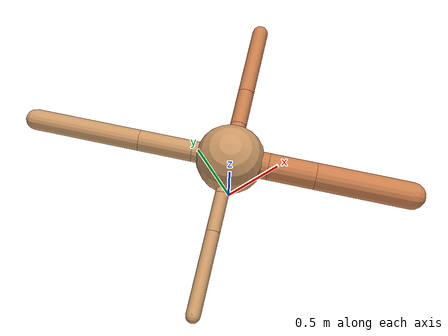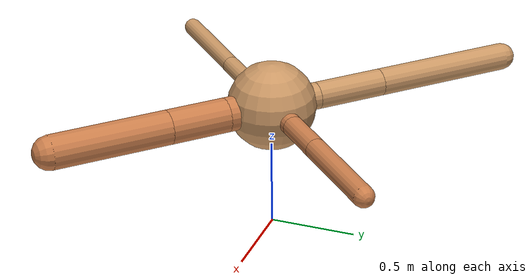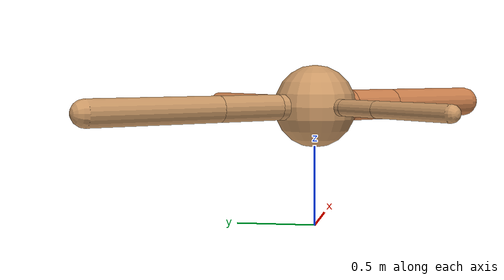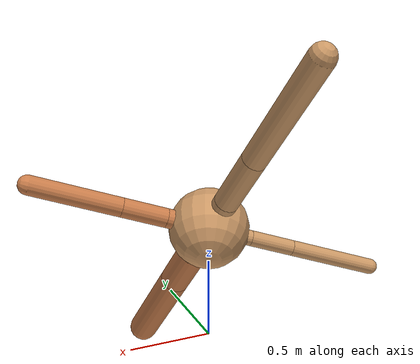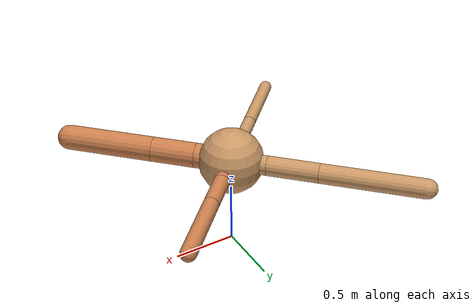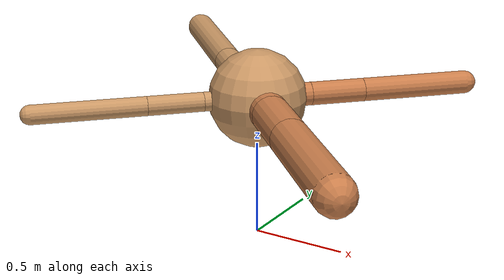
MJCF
<?xml version="1.0" ?>
<mujoco model="ant">

	<compiler angle="degree" coordinate="local" inertiafromgeom="true"/>

	<option integrator="RK4" timestep="0.01"/>

	<custom>

		<numeric data="0.0 0.0 0.55 1.0 0.0 0.0 0.0 0.0 1.0 0.0 -1.0 0.0 -1.0 0.0 1.0" name="init_qpos"/>

	</custom>

	<default>

		<joint armature="1" damping="1" limited="true"/>

		<geom conaffinity="0" condim="3" density="5.0" friction="1.5 0.1 0.1" margin="0.01" rgba="0.8 0.6 0.4 1"/>

	</default>

	<worldbody>

		<body name="torso" pos="0 0 0.75">

			<geom name="torso_geom" pos="0 0 0" size="0.2550442480850814" type="sphere"/>

			<!--joint armature="0" damping="0" limited="false" margin="0.01" name="root" pos="0 0 0" type="free"/-->

			<body name="front_left_leg" pos="0 0 0">

				<geom fromto="0 0 0 0.2 0.2 0" name="aux_1_geom" size="0.06120609128825512" type="capsule" rgba=".8 .5 .3 1"/>

				<body name="aux_1" pos="0.2 0.2 0">

					<joint axis="0 0 1" name="hip_1" pos="0.0 0.0 0.0" range="-40 40" type="hinge"/>

					<geom fromto="0 0 0 0.20196369188007 0.20196369188007 0" name="left_leg_geom" size="0.06120609128825512" type="capsule" rgba=".8 .5 .3 1"/>

					<body pos="0.20196369188007 0.20196369188007 0" name="front_left_foot">

						<joint axis="-1 1 0" name="ankle_1" pos="0.0 0.0 0.0" range="30 100" type="hinge"/>

						<geom fromto="0 0 0 0.40392738376014 0.40392738376014 0" name="left_ankle_geom" size="0.06120609128825512" type="capsule" rgba=".8 .5 .3 1"/>

					</body>

				</body>

			</body>

			<body name="front_right_leg" pos="0 0 0">

				<geom fromto="0 0 0 -0.2 0.2 0" name="aux_2_geom" size="0.0778911178018667" type="capsule"/>

				<body name="aux_2" pos="-0.2 0.2 0">

					<joint axis="0 0 1" name="hip_2" pos="0.0 0.0 0.0" range="-40 40" type="hinge"/>

					<geom fromto="0 0 0 -0.28590058982977584 0.28590058982977584 0" name="right_leg_geom" size="0.0778911178018667" type="capsule"/>

					<body pos="-0.28590058982977584 0.28590058982977584 0" name="front_right_foot">

						<joint axis="1 1 0" name="ankle_2" pos="0.0 0.0 0.0" range="-100 -30" type="hinge"/>

						<geom fromto="0 0 0 -0.5718011796595517 0.5718011796595517 0" name="right_ankle_geom" size="0.0778911178018667" type="capsule"/>

					</body>

				</body>

			</body>

			<body name="left_back_leg" pos="0 0 0">

				<geom fromto="0 0 0 -0.2 -0.2 0" name="aux_3_geom" size="0.050269258232104576" type="capsule"/>

				<body name="aux_3" pos="-0.2 -0.2 0">

					<joint axis="0 0 1" name="hip_3" pos="0.0 0.0 0.0" range="-40 40" type="hinge"/>

					<geom fromto="0 0 0 -0.2048257855751998 -0.2048257855751998 0" name="back_leg_geom" size="0.050269258232104576" type="capsule"/>

					<body pos="-0.2048257855751998 -0.2048257855751998 0" name="left_back_foot">

						<joint axis="-1 1 0" name="ankle_3" pos="0.0 0.0 0.0" range="-100 -30" type="hinge"/>

						<geom fromto="0 0 0 -0.4096515711503996 -0.4096515711503996 0" name="third_ankle_geom" size="0.050269258232104576" type="capsule"/>

					</body>

				</body>

			</body>

			<body name="right_back_leg" pos="0 0 0">

				<geom fromto="0 0 0 0.2 -0.2 0" name="aux_4_geom" size="0.09855471933395331" type="capsule" rgba=".8 .5 .3 1"/>

				<body name="aux_4" pos="0.2 -0.2 0">

					<joint axis="0 0 1" name="hip_4" pos="0.0 0.0 0.0" range="-40 40" type="hinge"/>

					<geom fromto="0 0 0 0.24511261129352443 -0.24511261129352443 0" name="rightback_leg_geom" size="0.09855471933395331" type="capsule" rgba=".8 .5 .3 1"/>

					<body pos="0.24511261129352443 -0.24511261129352443 0" name="right_back_foot">

						<joint axis="1 1 0" name="ankle_4" pos="0.0 0.0 0.0" range="30 100" type="hinge"/>

						<geom fromto="0 0 0 0.49022522258704887 -0.49022522258704887 0" name="fourth_ankle_geom" size="0.09855471933395331" type="capsule" rgba=".8 .5 .3 1"/>

					</body>

				</body>

			</body>

		</body>

	</worldbody>

	<actuator>

		<motor ctrllimited="true" ctrlrange="-1.0 1.0" joint="hip_4" gear="150"/>

		<motor ctrllimited="true" ctrlrange="-1.0 1.0" joint="ankle_4" gear="150"/>

		<motor ctrllimited="true" ctrlrange="-1.0 1.0" joint="hip_1" gear="150"/>

		<motor ctrllimited="true" ctrlrange="-1.0 1.0" joint="ankle_1" gear="150"/>

		<motor ctrllimited="true" ctrlrange="-1.0 1.0" joint="hip_2" gear="150"/>

		<motor ctrllimited="true" ctrlrange="-1.0 1.0" joint="ankle_2" gear="150"/>

		<motor ctrllimited="true" ctrlrange="-1.0 1.0" joint="hip_3" gear="150"/>

		<motor ctrllimited="true" ctrlrange="-1.0 1.0" joint="ankle_3" gear="150"/>

	</actuator>

</mujoco>
